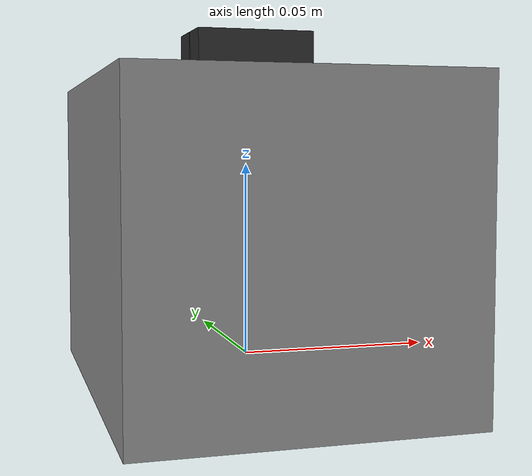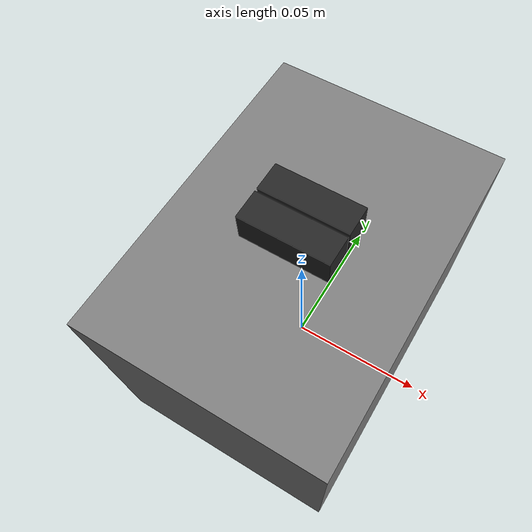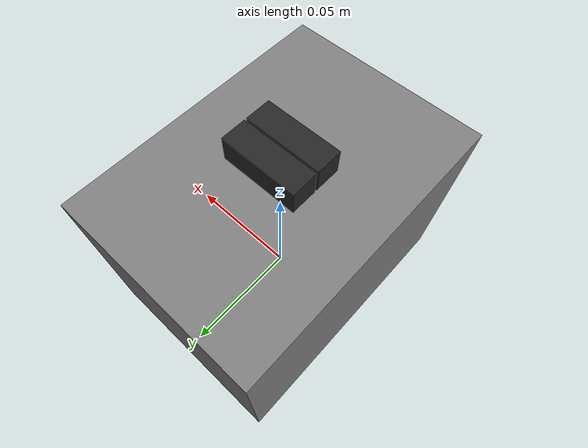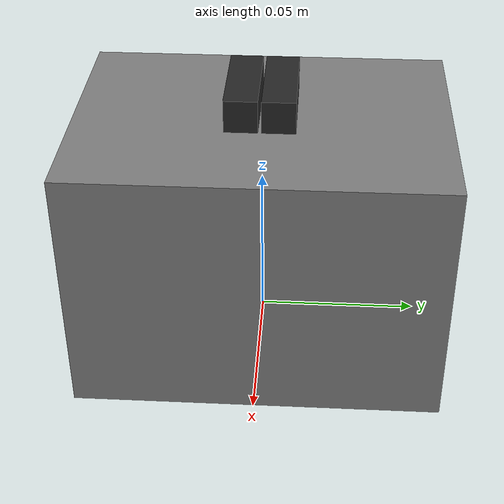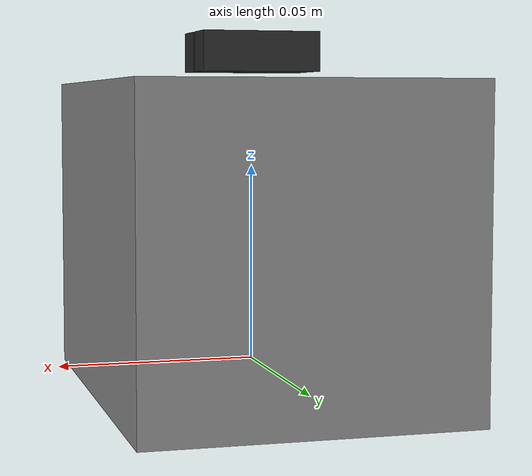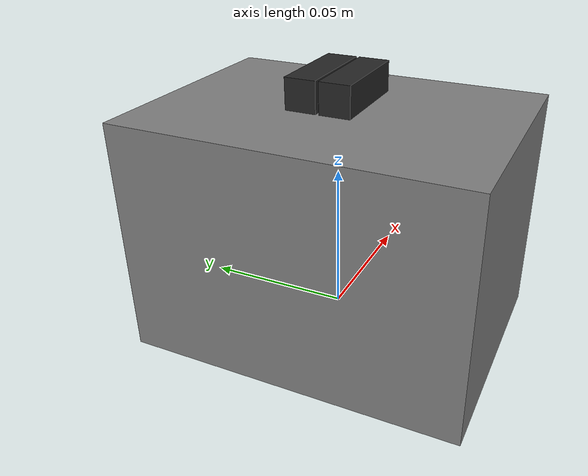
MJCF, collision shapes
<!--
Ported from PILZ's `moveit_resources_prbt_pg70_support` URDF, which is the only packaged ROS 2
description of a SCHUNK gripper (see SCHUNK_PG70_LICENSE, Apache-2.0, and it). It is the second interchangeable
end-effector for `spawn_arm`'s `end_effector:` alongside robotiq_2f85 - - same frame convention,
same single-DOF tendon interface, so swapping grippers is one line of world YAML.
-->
<mujoco model="schunk_pg70">
  <compiler angle="radian" meshdir="meshes" autolimits="true"/>

  <default>
    <!-- Gripper-scoped class names: this model is attached INTO an arm's spec, and with an empty
         end-effector prefix a class called `visual` would collide with the arm's own. -->
    <default class="pg70">
      <default class="pg70_visual">
        <geom type="mesh" contype="0" conaffinity="0" group="2" material="pg70_metal"/>
      </default>
      <default class="pg70_collision">
        <geom group="3"/>
      </default>
      <default class="pg70_jaw">
        <geom type="box" size="0.015 0.005 0.005" friction="1.0 0.005 0.0001" condim="4"
          priority="1" solimp="0.95 0.99 0.001" solref="0.004 1" rgba="0.15 0.15 0.15 1"/>
      </default>
      <default class="pg70_finger">
        <joint type="slide" range="-0.001 0.0301" armature="0.02" damping="2.0"
          solimplimit="0.95 0.99 0.001" solreflimit="0.005 1"/>
      </default>
    </default>
  </default>

  <asset>
    <material name="pg70_metal" rgba="0.68 0.69 0.71 1" specular="0.5" shininess="0.4"/>
    <mesh name="pg70_body" file="pg70.stl"/>
  </asset>

  <worldbody>
    <body name="palm_link" childclass="pg70">
      <inertial pos="0 0 0.0315" mass="1.3" diaginertia="0.0015 0.0011 0.0013"/>
      <geom class="pg70_visual" mesh="pg70_body"/>
      <geom class="pg70_collision" type="box" size="0.041 0.057 0.040" pos="0 0 0.03145"/>
      <!-- Grasp centre on the approach axis, at the jaw plane. A driver reaches this site's pose so
           nothing downstream hardcodes a finger offset. -->
      <site name="pinch" pos="0 0 0.0789" type="sphere" size="0.005" group="5" rgba="0.9 0.9 0.9 1"/>

      <!-- Left jaw: URDF origin (0, 0.0055, 0.0789), axis +y. Positive q opens. -->
      <body name="finger_left_link" pos="0 0.0055 0.0789">
        <inertial pos="0 0 0" mass="0.05" diaginertia="2e-06 5e-06 5e-06"/>
        <joint name="finger_left_joint" class="pg70_finger" axis="0 1 0"/>
        <geom class="pg70_jaw" name="finger_left_pad"/>
      </body>

      <body name="finger_right_link" pos="0 -0.0055 0.0789">
        <inertial pos="0 0 0" mass="0.05" diaginertia="2e-06 5e-06 5e-06"/>
        <joint name="finger_right_joint" class="pg70_finger" axis="0 -1 0"/>
        <geom class="pg70_jaw" name="finger_right_pad"/>
      </body>
    </body>
  </worldbody>

  <contact>
    <!-- The jaws start 1 mm apart at q=0 and may cross at the -0.001 limit; without this they
         collide with each other and with the palm they slide against. -->
    <exclude body1="palm_link" body2="finger_left_link"/>
    <exclude body1="palm_link" body2="finger_right_link"/>
    <exclude body1="finger_left_link" body2="finger_right_link"/>
  </contact>

  <tendon>
    <!-- Negative coefficients so tendon length is -opening: see the header. -->
    <fixed name="split">
      <joint joint="finger_left_joint" coef="-0.5"/>
      <joint joint="finger_right_joint" coef="-0.5"/>
    </fixed>
  </tendon>

  <equality>
    <!-- The URDF's mimic: right jaw follows the left 1:1, so the gripper is truly one DOF. -->
    <joint joint1="finger_right_joint" joint2="finger_left_joint" polycoef="0 1 0 0 0"
      solimp="0.95 0.99 0.001" solref="0.005 1"/>
  </equality>

  <actuator>
    <position name="finger_actuator" tendon="split" kp="5000" kv="50"
      ctrlrange="-0.0301 0.001" forcerange="-200 200"/>
  </actuator>
</mujoco>
